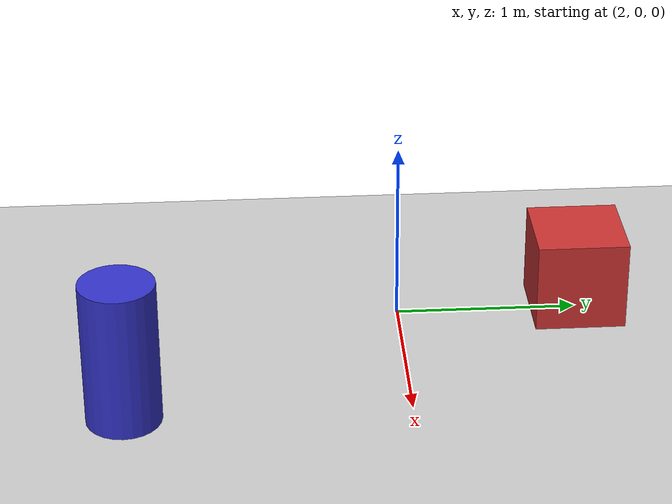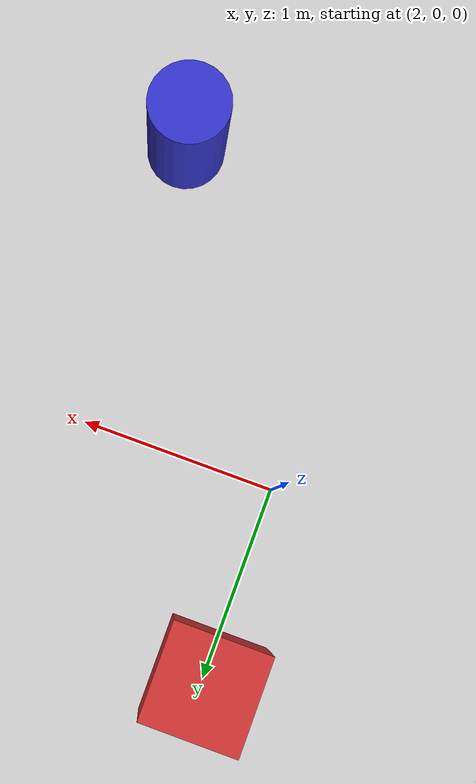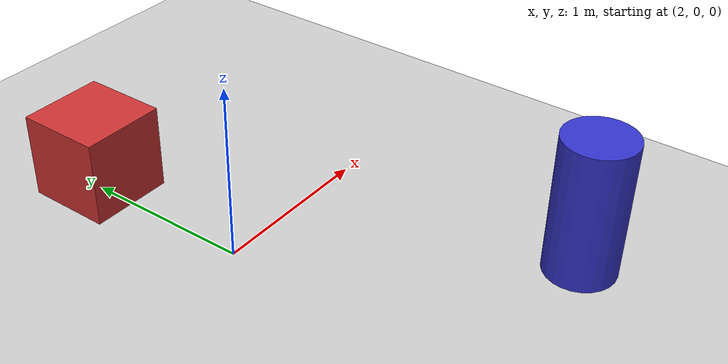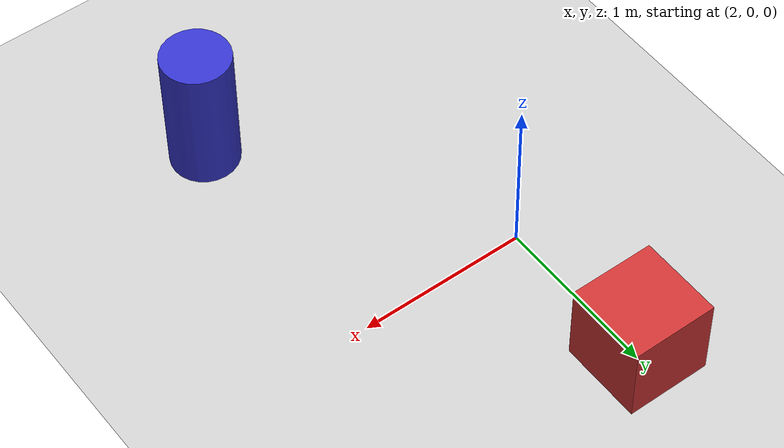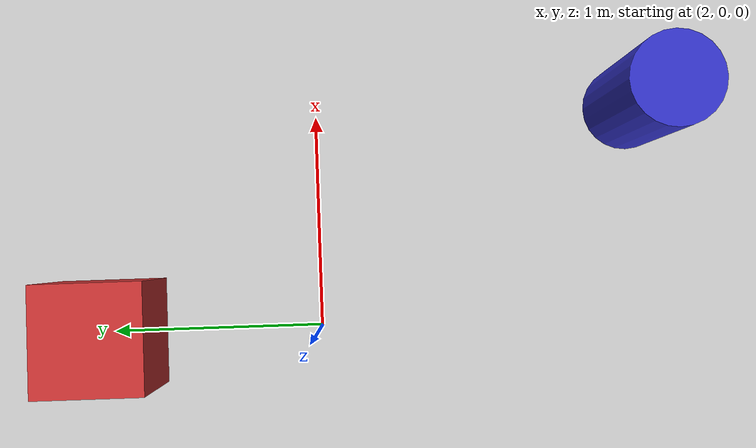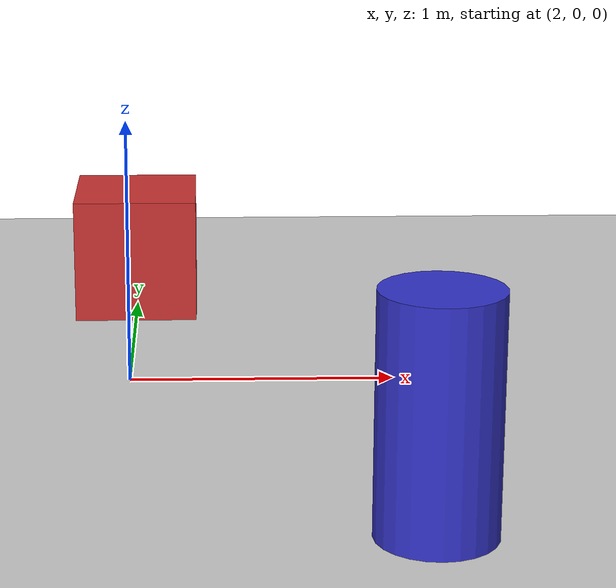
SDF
<?xml version="1.0" ?>
<!-- Synthetic demo world: generated for examples, contains no surveyed data. -->
<sdf version="1.6">
  <world name="empty_ground">

    <include>
      <uri>model://sun</uri>
    </include>

    <include>
      <uri>model://ground_plane</uri>
    </include>

    <!-- A few synthetic obstacle boxes to look at through the VNC desktop. -->
    <model name="box_left">
      <pose>2 1 0.25 0 0 0</pose>
      <static>true</static>
      <link name="link">
        <collision name="collision">
          <geometry>
            <box><size>0.5 0.5 0.5</size></box>
          </geometry>
        </collision>
        <visual name="visual">
          <geometry>
            <box><size>0.5 0.5 0.5</size></box>
          </geometry>
          <material>
            <ambient>0.8 0.2 0.2 1</ambient>
            <diffuse>0.8 0.2 0.2 1</diffuse>
          </material>
        </visual>
      </link>
    </model>

    <model name="cylinder_right">
      <pose>3 -1.5 0.4 0 0 0</pose>
      <static>true</static>
      <link name="link">
        <collision name="collision">
          <geometry>
            <cylinder><radius>0.2</radius><length>0.8</length></cylinder>
          </geometry>
        </collision>
        <visual name="visual">
          <geometry>
            <cylinder><radius>0.2</radius><length>0.8</length></cylinder>
          </geometry>
          <material>
            <ambient>0.2 0.2 0.8 1</ambient>
            <diffuse>0.2 0.2 0.8 1</diffuse>
          </material>
        </visual>
      </link>
    </model>

  </world>
</sdf>
